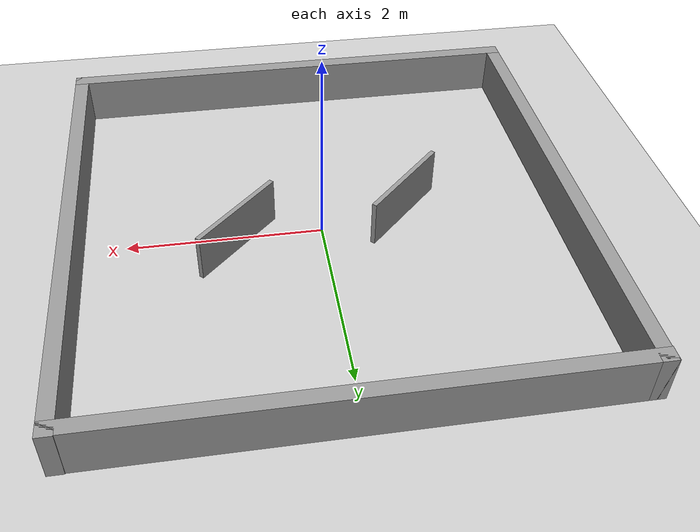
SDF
<?xml version="1.0" ?>
<sdf version="1.6">
  <world name="my_world">
    <!-- 环境光 -->
    <include>
      <uri>model://sun</uri>
    </include>

    <!-- 地面 -->
    <include>
      <uri>model://ground_plane</uri>
      <script>
        <uri>file://media/materials/scripts/gazebo.material</uri>
        <name>Gazebo/White</name>
      </script>
    </include>

    <!--模型 -->
    <model name='infantry1v1'>
      <include>
        <uri>model://infantry1v1</uri>
      </include>
    </model>

  </world>
</sdf>

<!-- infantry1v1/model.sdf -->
<sdf version='1.7'>
  <model name='Infantry1v1'>
    <pose>-0.003 0.003 0 0 -0 0</pose>
    <link name='Wall_11'>
      <collision name='Wall_11_Collision'>
        <geometry>
          <box>
            <size>5.15 0.15 0.5</size>
          </box>
        </geometry>
        <pose>0 0 0.25 0 -0 0</pose>
      </collision>
      <visual name='Wall_11_Visual'>
        <pose>0 0 0.25 0 -0 0</pose>
        <geometry>
          <box>
            <size>5.15 0.15 0.5</size>
          </box>
        </geometry>
        <material>
          <script>
            <uri>file://media/materials/scripts/gazebo.material</uri>
            <name>Gazebo/Grey</name>
          </script>
          <ambient>1 1 1 1</ambient>
        </material>
        <meta>
          <layer>0</layer>
        </meta>
      </visual>
      <pose>-2.497 -0.003 0 0 -0 1.5708</pose>
    </link>
    <link name='Wall_15'>
      <collision name='Wall_15_Collision'>
        <geometry>
          <box>
            <size>5.15 0.15 0.5</size>
          </box>
        </geometry>
        <pose>0 0 0.25 0 -0 0</pose>
      </collision>
      <visual name='Wall_15_Visual'>
        <pose>0 0 0.25 0 -0 0</pose>
        <geometry>
          <box>
            <size>5.15 0.15 0.5</size>
          </box>
        </geometry>
        <material>
          <script>
            <uri>file://media/materials/scripts/gazebo.material</uri>
            <name>Gazebo/Grey</name>
          </script>
          <ambient>1 1 1 1</ambient>
        </material>
        <meta>
          <layer>0</layer>
        </meta>
      </visual>
      <pose>2.503 0.003 0 0 -0 1.5708</pose>
    </link>
    <link name='Wall_17'>
      <collision name='Wall_17_Collision'>
        <geometry>
          <box>
            <size>5.15 0.15 0.5</size>
          </box>
        </geometry>
        <pose>0 0 0.25 0 -0 0</pose>
      </collision>
      <visual name='Wall_17_Visual'>
        <pose>0 0 0.25 0 -0 0</pose>
        <geometry>
          <box>
            <size>5.15 0.15 0.5</size>
          </box>
        </geometry>
        <material>
          <script>
            <uri>file://media/materials/scripts/gazebo.material</uri>
            <name>Gazebo/Grey</name>
          </script>
          <ambient>1 1 1 1</ambient>
        </material>
        <meta>
          <layer>0</layer>
        </meta>
      </visual>
      <pose>0.003 -2.503 0 0 -0 0</pose>
    </link>
    <link name='Wall_19'>
      <collision name='Wall_19_Collision'>
        <geometry>
          <box>
            <size>1.11066 0.05 0.5</size>
          </box>
        </geometry>
        <pose>0 0 0.25 0 -0 0</pose>
      </collision>
      <visual name='Wall_19_Visual'>
        <pose>0 0 0.25 0 -0 0</pose>
        <geometry>
          <box>
            <size>1.11066 0.05 0.5</size>
          </box>
        </geometry>
        <material>
          <script>
            <uri>file://media/materials/scripts/gazebo.material</uri>
            <name>Gazebo/Grey</name>
          </script>
          <ambient>1 1 1 1</ambient>
        </material>
        <meta>
          <layer>0</layer>
        </meta>
      </visual>
      <pose>-0.872 -0.128 0 0 -0 0.785398</pose>
    </link>
    <link name='Wall_22'>
      <collision name='Wall_22_Collision'>
        <geometry>
          <box>
            <size>1.11066 0.05 0.5</size>
          </box>
        </geometry>
        <pose>0 0 0.25 0 -0 0</pose>
      </collision>
      <visual name='Wall_22_Visual'>
        <pose>0 0 0.25 0 -0 0</pose>
        <geometry>
          <box>
            <size>1.11066 0.05 0.5</size>
          </box>
        </geometry>
        <material>
          <script>
            <uri>file://media/materials/scripts/gazebo.material</uri>
            <name>Gazebo/Grey</name>
          </script>
          <ambient>1 1 1 1</ambient>
        </material>
        <meta>
          <layer>0</layer>
        </meta>
      </visual>
      <pose>0.878 0.122 0 0 -0 -2.35619</pose>
    </link>
    <link name='Wall_9'>
      <collision name='Wall_9_Collision'>
        <geometry>
          <box>
            <size>5.15 0.15 0.5</size>
          </box>
        </geometry>
        <pose>0 0 0.25 0 -0 0</pose>
      </collision>
      <visual name='Wall_9_Visual'>
        <pose>0 0 0.25 0 -0 0</pose>
        <geometry>
          <box>
            <size>5.15 0.15 0.5</size>
          </box>
        </geometry>
        <material>
          <script>
            <uri>file://media/materials/scripts/gazebo.material</uri>
            <name>Gazebo/Grey</name>
          </script>
          <ambient>1 1 1 1</ambient>
        </material>
        <meta>
          <layer>0</layer>
        </meta>
      </visual>
      <pose>-0.003 2.497 0 0 -0 0</pose>
    </link>
    <static>1</static>
  </model>
</sdf>
